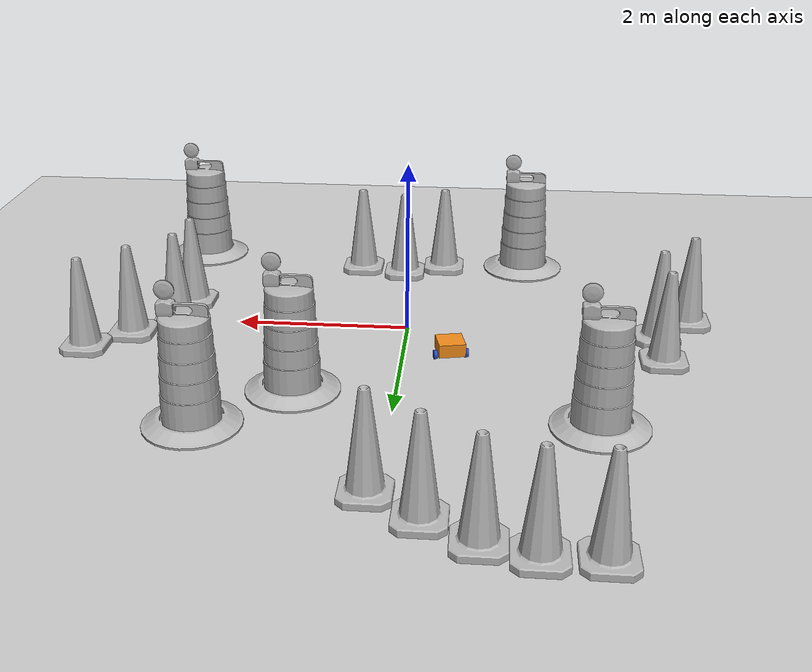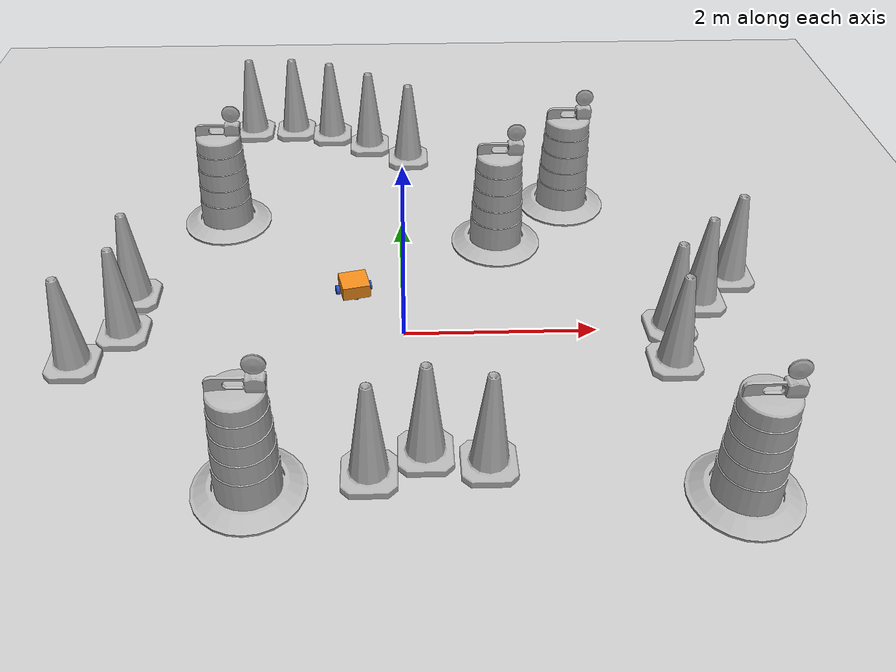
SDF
<sdf version="1.7">
 <world name="default">
  <light name="sun" type="directional">
   <pose>0 0 10 0 -0 0</pose>
   <diffuse>0.8 0.8 0.8 1</diffuse>
   <specular>0.2 0.2 0.2 1</specular>
   <attenuation>
    <range>1000</range>
    <constant>0.9</constant>
    <linear>0.01</linear>
    <quadratic>0.001</quadratic>
   </attenuation>
   <direction>-0.5 0.1 -0.9</direction>
   <spot><inner_angle>0</inner_angle><outer_angle>0</outer_angle><falloff>0</falloff></spot>
  </light>
  <model name="ground_plane">
   <static>1</static>
   <link name="link">
    <collision name="collision">
     <geometry><plane><normal>0 0 1</normal><size>100 100</size></plane></geometry>
     <surface>
      <contact><collide_bitmask>65535</collide_bitmask></contact>
      <friction><ode><mu>100</mu><mu2>50</mu2></ode></friction>
     </surface>
    </collision>
    <visual name="visual">
     <cast_shadows>0</cast_shadows>
     <geometry><plane><normal>0 0 1</normal><size>100 100</size></plane></geometry>
     <material>
      <script><uri>file://media/materials/scripts/gazebo.material</uri><name>Gazebo/Grey</name></script>
     </material>
    </visual>
   </link>
  </model>
  <gravity>0 0 -9.8</gravity>
  <magnetic_field>6e-06 2.3e-05 -4.2e-05</magnetic_field>
  <atmosphere type="adiabatic"/>
  <physics type="ode">
   <max_step_size>0.001</max_step_size>
   <real_time_factor>1</real_time_factor>
   <real_time_update_rate>1000</real_time_update_rate>
  </physics>
  <scene><ambient>0.4 0.4 0.4 1</ambient><background>0.7 0.7 0.7 1</background><shadows>1</shadows></scene>
  <audio><device>default</device></audio>
  <spherical_coordinates>
   <surface_model>EARTH_WGS84</surface_model>
   <latitude_deg>0</latitude_deg>
   <longitude_deg>0</longitude_deg>
   <elevation>0</elevation>
   <heading_deg>0</heading_deg>
  </spherical_coordinates>
  <model name="my_bot">
   <link name="base_link">
    <inertial>
     <pose>0.065 0 0.0625 0 -0 0</pose>
     <mass>0.6</mass>
     <inertia>
      <ixx>0.00525625</ixx>
      <ixy>0</ixy>
      <ixz>0.0005625</ixz>
      <iyy>0.00593125</iyy>
      <iyz>0</iyz>
      <izz>0.008275</izz>
     </inertia>
    </inertial>
    <collision name="base_link_fixed_joint_lump__chassis_collision">
     <pose>0.05 0 0.075 0 -0 0</pose>
     <geometry><box><size>0.3 0.3 0.15</size></box></geometry>
    </collision>
    <collision name="base_link_fixed_joint_lump__caster_wheel_collision_1">
     <pose>0.14 0 0 0 -0 0</pose>
     <geometry><sphere><radius>0.05</radius></sphere></geometry>
     <surface><friction><ode><mu>0.001</mu><mu2>0.001</mu2></ode></friction></surface>
    </collision>
    <visual name="base_link_fixed_joint_lump__chassis_visual">
     <pose>0.05 0 0.075 0 -0 0</pose>
     <geometry><box><size>0.3 0.3 0.15</size></box></geometry>
     <material>
      <script><name>Gazebo/Orange</name><uri>file://media/materials/scripts/gazebo.material</uri></script>
     </material>
    </visual>
    <visual name="base_link_fixed_joint_lump__caster_wheel_visual_1">
     <pose>0.14 0 0 0 -0 0</pose>
     <geometry><sphere><radius>0.05</radius></sphere></geometry>
     <material>
      <script><name>Gazebo/Black</name><uri>file://media/materials/scripts/gazebo.material</uri></script>
     </material>
    </visual>
   </link>
   <joint name="left_wheel_joint" type="revolute">
    <pose relative_to="base_link">0 0.175 0 -1.5708 0 0</pose>
    <parent>base_link</parent>
    <child>left_wheel</child>
    <axis>
     <xyz>0 0 1</xyz>
     <limit><lower>-1e+16</lower><upper>1e+16</upper></limit>
     <dynamics><spring_reference>0</spring_reference><spring_stiffness>0</spring_stiffness></dynamics>
    </axis>
   </joint>
   <link name="left_wheel">
    <pose relative_to="left_wheel_joint">0 0 0 0 -0 0</pose>
    <inertial>
     <mass>0.1</mass>
     <inertia>
      <ixx>7.58333e-05</ixx>
      <ixy>0</ixy>
      <ixz>0</ixz>
      <iyy>7.58333e-05</iyy>
      <iyz>0</iyz>
      <izz>0.000125</izz>
     </inertia>
    </inertial>
    <collision name="left_wheel_collision">
     <geometry><cylinder><length>0.04</length><radius>0.05</radius></cylinder></geometry>
    </collision>
    <visual name="left_wheel_visual">
     <geometry><cylinder><length>0.04</length><radius>0.05</radius></cylinder></geometry>
     <material>
      <script><name>Gazebo/Blue</name><uri>file://media/materials/scripts/gazebo.material</uri></script>
     </material>
    </visual>
   </link>
   <joint name="right_wheel_joint" type="revolute">
    <pose relative_to="base_link">0 -0.175 0 1.5708 -0 0</pose>
    <parent>base_link</parent>
    <child>right_wheel</child>
    <axis>
     <xyz>0 0 -1</xyz>
     <limit><lower>-1e+16</lower><upper>1e+16</upper></limit>
     <dynamics><spring_reference>0</spring_reference><spring_stiffness>0</spring_stiffness></dynamics>
    </axis>
   </joint>
   <link name="right_wheel">
    <pose relative_to="right_wheel_joint">0 0 0 0 -0 0</pose>
    <inertial>
     <mass>0.1</mass>
     <inertia>
      <ixx>7.58333e-05</ixx>
      <ixy>0</ixy>
      <ixz>0</ixz>
      <iyy>7.58333e-05</iyy>
      <iyz>0</iyz>
      <izz>0.000125</izz>
     </inertia>
    </inertial>
    <collision name="right_wheel_collision">
     <geometry><cylinder><length>0.04</length><radius>0.05</radius></cylinder></geometry>
    </collision>
    <visual name="right_wheel_visual">
     <geometry><cylinder><length>0.04</length><radius>0.05</radius></cylinder></geometry>
     <material>
      <script><name>Gazebo/Blue</name><uri>file://media/materials/scripts/gazebo.material</uri></script>
     </material>
    </visual>
   </link>
   <static>0</static>
   <plugin name="diff_drive" filename="libgazebo_ros_diff_drive.so">
    <left_joint>left_wheel_joint</left_joint>
    <right_joint>right_wheel_joint</right_joint>
    <wheel_separation>0.297</wheel_separation>
    <wheel_diameter>0.066</wheel_diameter>
    <max_wheel_torque>200</max_wheel_torque>
    <max_wheel_acceleration>10.0</max_wheel_acceleration>
    <odometry_frame>odom</odometry_frame>
    <robot_base_frame>base_link</robot_base_frame>
    <publish_odom>1</publish_odom>
    <publish_odom_tf>1</publish_odom_tf>
    <publish_wheel_tf>1</publish_wheel_tf>
   </plugin>
   <pose>-0.541471 0.723567 0.05 -0 1.5e-05 -1.35209</pose>
  </model>
  <light name="sun" type="directional">
   <pose>-10.1175 1.40862 10 0 -0 0</pose>
   <diffuse>0.8 0.8 0.8 1</diffuse>
   <specular>0.2 0.2 0.2 1</specular>
   <attenuation>
    <range>1000</range>
    <constant>0.9</constant>
    <linear>0.01</linear>
    <quadratic>0.001</quadratic>
   </attenuation>
   <direction>-0.5 0.1 -0.9</direction>
  </light>
  <model name="Construction Barrel">
   <link name="link">
    <inertial>
     <pose>0 0 0.4 0 -0 0</pose>
     <mass>500</mass>
     <inertia><ixx>51.2096</ixx><iyy>51.2096</iyy><izz>25</izz><ixy>0</ixy><ixz>0</ixz><iyz>0</iyz></inertia>
    </inertial>
    <collision name="collision">
     <geometry><mesh><uri>model://construction_barrel/meshes/construction_barrel.dae</uri></mesh></geometry>
    </collision>
    <visual name="visual">
     <geometry><mesh><uri>model://construction_barrel/meshes/construction_barrel.dae</uri></mesh></geometry>
    </visual>
   </link>
   <pose>1.0876 1.62185 -2e-06 1e-06 8e-06 -3.4e-05</pose>
  </model>
  <model name="Construction Barrel_clone">
   <link name="link">
    <inertial>
     <pose>0 0 0.4 0 -0 0</pose>
     <mass>500</mass>
     <inertia><ixx>51.2096</ixx><iyy>51.2096</iyy><izz>25</izz><ixy>0</ixy><ixz>0</ixz><iyz>0</iyz></inertia>
    </inertial>
    <collision name="collision">
     <geometry><mesh><uri>model://construction_barrel/meshes/construction_barrel.dae</uri></mesh></geometry>
    </collision>
    <visual name="visual">
     <geometry><mesh><uri>model://construction_barrel/meshes/construction_barrel.dae</uri></mesh></geometry>
    </visual>
   </link>
   <pose>-1.37657 -2.03587 -2e-06 -5e-06 -4e-06 -3.9e-05</pose>
  </model>
  <model name="Construction Barrel_clone_0">
   <link name="link">
    <inertial>
     <pose>0 0 0.4 0 -0 0</pose>
     <mass>500</mass>
     <inertia><ixx>51.2096</ixx><iyy>51.2096</iyy><izz>25</izz><ixy>0</ixy><ixz>0</ixz><iyz>0</iyz></inertia>
    </inertial>
    <collision name="collision">
     <geometry><mesh><uri>model://construction_barrel/meshes/construction_barrel.dae</uri></mesh></geometry>
    </collision>
    <visual name="visual">
     <geometry><mesh><uri>model://construction_barrel/meshes/construction_barrel.dae</uri></mesh></geometry>
    </visual>
   </link>
   <pose>-2.07923 2.13201 -2e-06 -5e-06 -4e-06 -4.6e-05</pose>
  </model>
  <model name="Construction Barrel_clone_1">
   <link name="link">
    <inertial>
     <pose>0 0 0.4 0 -0 0</pose>
     <mass>500</mass>
     <inertia><ixx>51.2096</ixx><iyy>51.2096</iyy><izz>25</izz><ixy>0</ixy><ixz>0</ixz><iyz>0</iyz></inertia>
    </inertial>
    <collision name="collision">
     <geometry><mesh><uri>model://construction_barrel/meshes/construction_barrel.dae</uri></mesh></geometry>
    </collision>
    <visual name="visual">
     <geometry><mesh><uri>model://construction_barrel/meshes/construction_barrel.dae</uri></mesh></geometry>
    </visual>
   </link>
   <pose>2.89717 -2.20913 -2e-06 1e-06 8e-06 -2.7e-05</pose>
  </model>
  <model name="Construction Barrel_clone_2">
   <link name="link">
    <inertial>
     <pose>0 0 0.4 0 -0 0</pose>
     <mass>500</mass>
     <inertia><ixx>51.2096</ixx><iyy>51.2096</iyy><izz>25</izz><ixy>0</ixy><ixz>0</ixz><iyz>0</iyz></inertia>
    </inertial>
    <collision name="collision">
     <geometry><mesh><uri>model://construction_barrel/meshes/construction_barrel.dae</uri></mesh></geometry>
    </collision>
    <visual name="visual">
     <geometry><mesh><uri>model://construction_barrel/meshes/construction_barrel.dae</uri></mesh></geometry>
    </visual>
   </link>
   <pose>1.96349 2.42077 -1e-06 1e-06 -9e-06 -2.7e-05</pose>
  </model>
  <model name="Construction Cone">
   <link name="link">
    <collision name="collision">
     <geometry>
      <mesh><scale>10 10 10</scale><uri>model://construction_cone/meshes/construction_cone.dae</uri></mesh>
     </geometry>
    </collision>
    <visual name="visual">
     <geometry>
      <mesh><scale>10 10 10</scale><uri>model://construction_cone/meshes/construction_cone.dae</uri></mesh>
     </geometry>
    </visual>
    <inertial>
     <inertia><ixx>1</ixx><ixy>0</ixy><ixz>0</ixz><iyy>1</iyy><iyz>0</iyz><izz>1</izz></inertia>
     <mass>1</mass>
    </inertial>
   </link>
   <pose>0.721917 -1.82404 -4e-06 3e-06 -0 0</pose>
  </model>
  <model name="Construction Cone_clone">
   <link name="link">
    <collision name="collision">
     <geometry>
      <mesh><scale>10 10 10</scale><uri>model://construction_cone/meshes/construction_cone.dae</uri></mesh>
     </geometry>
    </collision>
    <visual name="visual">
     <geometry>
      <mesh><scale>10 10 10</scale><uri>model://construction_cone/meshes/construction_cone.dae</uri></mesh>
     </geometry>
    </visual>
    <inertial>
     <inertia><ixx>1</ixx><ixy>0</ixy><ixz>0</ixz><iyy>1</iyy><iyz>0</iyz><izz>1</izz></inertia>
     <mass>1</mass>
    </inertial>
   </link>
   <pose>0.16485 -1.68813 -1e-05 -1e-06 -0 -0.000171</pose>
  </model>
  <model name="Construction Cone_clone_0">
   <link name="link">
    <collision name="collision">
     <geometry>
      <mesh><scale>10 10 10</scale><uri>model://construction_cone/meshes/construction_cone.dae</uri></mesh>
     </geometry>
    </collision>
    <visual name="visual">
     <geometry>
      <mesh><scale>10 10 10</scale><uri>model://construction_cone/meshes/construction_cone.dae</uri></mesh>
     </geometry>
    </visual>
    <inertial>
     <inertia><ixx>1</ixx><ixy>0</ixy><ixz>0</ixz><iyy>1</iyy><iyz>0</iyz><izz>1</izz></inertia>
     <mass>1</mass>
    </inertial>
   </link>
   <pose>-0.338116 -1.92146 0 -0 -0 -0.000128</pose>
  </model>
  <model name="Construction Cone_clone_1">
   <link name="link">
    <collision name="collision">
     <geometry>
      <mesh><scale>10 10 10</scale><uri>model://construction_cone/meshes/construction_cone.dae</uri></mesh>
     </geometry>
    </collision>
    <visual name="visual">
     <geometry>
      <mesh><scale>10 10 10</scale><uri>model://construction_cone/meshes/construction_cone.dae</uri></mesh>
     </geometry>
    </visual>
    <inertial>
     <inertia><ixx>1</ixx><ixy>0</ixy><ixz>0</ixz><iyy>1</iyy><iyz>0</iyz><izz>1</izz></inertia>
     <mass>1</mass>
    </inertial>
   </link>
   <pose>-2.88767 0.659352 -2e-06 -3e-06 -1e-06 -0</pose>
  </model>
  <model name="Construction Cone_clone_2">
   <link name="link">
    <collision name="collision">
     <geometry>
      <mesh><scale>10 10 10</scale><uri>model://construction_cone/meshes/construction_cone.dae</uri></mesh>
     </geometry>
    </collision>
    <visual name="visual">
     <geometry>
      <mesh><scale>10 10 10</scale><uri>model://construction_cone/meshes/construction_cone.dae</uri></mesh>
     </geometry>
    </visual>
    <inertial>
     <inertia><ixx>1</ixx><ixy>0</ixy><ixz>0</ixz><iyy>1</iyy><iyz>0</iyz><izz>1</izz></inertia>
     <mass>1</mass>
    </inertial>
   </link>
   <pose>-2.88767 0.052941 -0 0 -1e-06 0</pose>
  </model>
  <model name="Construction Cone_clone_3">
   <link name="link">
    <collision name="collision">
     <geometry>
      <mesh><scale>10 10 10</scale><uri>model://construction_cone/meshes/construction_cone.dae</uri></mesh>
     </geometry>
    </collision>
    <visual name="visual">
     <geometry>
      <mesh><scale>10 10 10</scale><uri>model://construction_cone/meshes/construction_cone.dae</uri></mesh>
     </geometry>
    </visual>
    <inertial>
     <inertia><ixx>1</ixx><ixy>0</ixy><ixz>0</ixz><iyy>1</iyy><iyz>0</iyz><izz>1</izz></inertia>
     <mass>1</mass>
    </inertial>
   </link>
   <pose>-3.29584 -0.410774 -0 0 0 -0.006711</pose>
  </model>
  <model name="Construction Cone_clone_4">
   <link name="link">
    <collision name="collision">
     <geometry>
      <mesh><scale>10 10 10</scale><uri>model://construction_cone/meshes/construction_cone.dae</uri></mesh>
     </geometry>
    </collision>
    <visual name="visual">
     <geometry>
      <mesh><scale>10 10 10</scale><uri>model://construction_cone/meshes/construction_cone.dae</uri></mesh>
     </geometry>
    </visual>
    <inertial>
     <inertia><ixx>1</ixx><ixy>0</ixy><ixz>0</ixz><iyy>1</iyy><iyz>0</iyz><izz>1</izz></inertia>
     <mass>1</mass>
    </inertial>
   </link>
   <pose>0.105883 3.51814 -0 0 -0 0</pose>
  </model>
  <model name="Construction Cone_clone_5">
   <link name="link">
    <collision name="collision">
     <geometry>
      <mesh><scale>10 10 10</scale><uri>model://construction_cone/meshes/construction_cone.dae</uri></mesh>
     </geometry>
    </collision>
    <visual name="visual">
     <geometry>
      <mesh><scale>10 10 10</scale><uri>model://construction_cone/meshes/construction_cone.dae</uri></mesh>
     </geometry>
    </visual>
    <inertial>
     <inertia><ixx>1</ixx><ixy>0</ixy><ixz>0</ixz><iyy>1</iyy><iyz>0</iyz><izz>1</izz></inertia>
     <mass>1</mass>
    </inertial>
   </link>
   <pose>-0.404272 3.87429 -0 0 -0 0</pose>
  </model>
  <model name="Construction Cone_clone_6">
   <link name="link">
    <collision name="collision">
     <geometry>
      <mesh><scale>10 10 10</scale><uri>model://construction_cone/meshes/construction_cone.dae</uri></mesh>
     </geometry>
    </collision>
    <visual name="visual">
     <geometry>
      <mesh><scale>10 10 10</scale><uri>model://construction_cone/meshes/construction_cone.dae</uri></mesh>
     </geometry>
    </visual>
    <inertial>
     <inertia><ixx>1</ixx><ixy>0</ixy><ixz>0</ixz><iyy>1</iyy><iyz>0</iyz><izz>1</izz></inertia>
     <mass>1</mass>
    </inertial>
   </link>
   <pose>-0.917951 4.17654 -8e-06 7e-06 -0 0.001049</pose>
  </model>
  <model name="Construction Cone_clone_7">
   <link name="link">
    <collision name="collision">
     <geometry>
      <mesh><scale>10 10 10</scale><uri>model://construction_cone/meshes/construction_cone.dae</uri></mesh>
     </geometry>
    </collision>
    <visual name="visual">
     <geometry>
      <mesh><scale>10 10 10</scale><uri>model://construction_cone/meshes/construction_cone.dae</uri></mesh>
     </geometry>
    </visual>
    <inertial>
     <inertia><ixx>1</ixx><ixy>0</ixy><ixz>0</ixz><iyy>1</iyy><iyz>0</iyz><izz>1</izz></inertia>
     <mass>1</mass>
    </inertial>
   </link>
   <pose>-1.42102 4.31318 -0 0 -0 0.001081</pose>
  </model>
  <model name="Construction Cone_clone_8">
   <link name="link">
    <collision name="collision">
     <geometry>
      <mesh><scale>10 10 10</scale><uri>model://construction_cone/meshes/construction_cone.dae</uri></mesh>
     </geometry>
    </collision>
    <visual name="visual">
     <geometry>
      <mesh><scale>10 10 10</scale><uri>model://construction_cone/meshes/construction_cone.dae</uri></mesh>
     </geometry>
    </visual>
    <inertial>
     <inertia><ixx>1</ixx><ixy>0</ixy><ixz>0</ixz><iyy>1</iyy><iyz>0</iyz><izz>1</izz></inertia>
     <mass>1</mass>
    </inertial>
   </link>
   <pose>-1.98286 4.30744 -4e-06 4e-06 -1e-06 0</pose>
  </model>
  <model name="Construction Cone_clone_9">
   <link name="link">
    <collision name="collision">
     <geometry>
      <mesh><scale>10 10 10</scale><uri>model://construction_cone/meshes/construction_cone.dae</uri></mesh>
     </geometry>
    </collision>
    <visual name="visual">
     <geometry>
      <mesh><scale>10 10 10</scale><uri>model://construction_cone/meshes/construction_cone.dae</uri></mesh>
     </geometry>
    </visual>
    <inertial>
     <inertia><ixx>1</ixx><ixy>0</ixy><ixz>0</ixz><iyy>1</iyy><iyz>0</iyz><izz>1</izz></inertia>
     <mass>1</mass>
    </inertial>
   </link>
   <pose>3.6026 0.837746 -0 0 0 -0.004226</pose>
  </model>
  <model name="Construction Cone_clone_10">
   <link name="link">
    <collision name="collision">
     <geometry>
      <mesh><scale>10 10 10</scale><uri>model://construction_cone/meshes/construction_cone.dae</uri></mesh>
     </geometry>
    </collision>
    <visual name="visual">
     <geometry>
      <mesh><scale>10 10 10</scale><uri>model://construction_cone/meshes/construction_cone.dae</uri></mesh>
     </geometry>
    </visual>
    <inertial>
     <inertia><ixx>1</ixx><ixy>0</ixy><ixz>0</ixz><iyy>1</iyy><iyz>0</iyz><izz>1</izz></inertia>
     <mass>1</mass>
    </inertial>
   </link>
   <pose>3.1742 0.422082 -0 -0 -0 -0.005975</pose>
  </model>
  <model name="Construction Cone_clone_11">
   <link name="link">
    <collision name="collision">
     <geometry>
      <mesh><scale>10 10 10</scale><uri>model://construction_cone/meshes/construction_cone.dae</uri></mesh>
     </geometry>
    </collision>
    <visual name="visual">
     <geometry>
      <mesh><scale>10 10 10</scale><uri>model://construction_cone/meshes/construction_cone.dae</uri></mesh>
     </geometry>
    </visual>
    <inertial>
     <inertia><ixx>1</ixx><ixy>0</ixy><ixz>0</ixz><iyy>1</iyy><iyz>0</iyz><izz>1</izz></inertia>
     <mass>1</mass>
    </inertial>
   </link>
   <pose>2.75508 -0.008672 0 0 -0 0.029386</pose>
  </model>
  <model name="Construction Cone_clone_12">
   <link name="link">
    <collision name="collision">
     <geometry>
      <mesh><scale>10 10 10</scale><uri>model://construction_cone/meshes/construction_cone.dae</uri></mesh>
     </geometry>
    </collision>
    <visual name="visual">
     <geometry>
      <mesh><scale>10 10 10</scale><uri>model://construction_cone/meshes/construction_cone.dae</uri></mesh>
     </geometry>
    </visual>
    <inertial>
     <inertia><ixx>1</ixx><ixy>0</ixy><ixz>0</ixz><iyy>1</iyy><iyz>0</iyz><izz>1</izz></inertia>
     <mass>1</mass>
    </inertial>
   </link>
   <pose>2.68553 -0.534219 -6e-06 -4e-06 0 0</pose>
  </model>
 </world>
</sdf>
